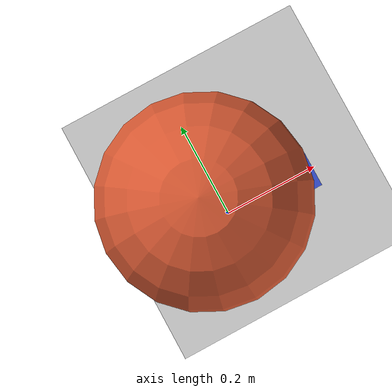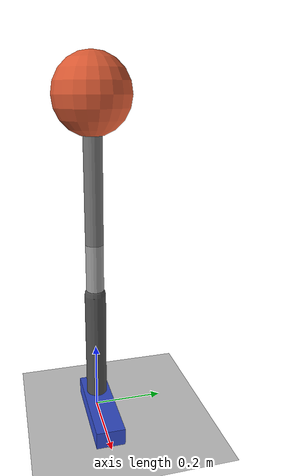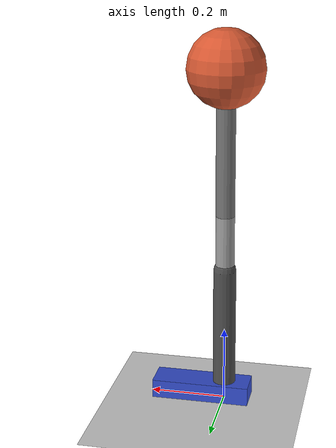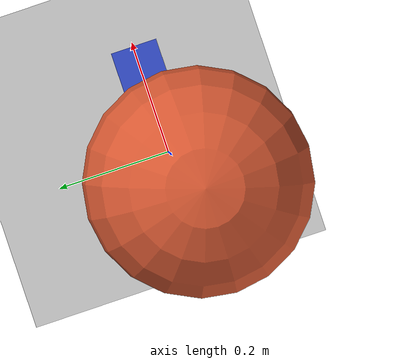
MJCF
<mujoco model="stance_prosthetic_leg">

    <compiler angle="radian"/>

    <option
        timestep="0.001"
        gravity="0 0 -9.81"/>

    <!--
        Native MuJoCo collisions disabled.

        Ground forces will be supplied externally by ground.py
        at heel_site and toe_site.
    -->
    <default>

        <geom
            contype="0"
            conaffinity="0"/>

    </default>

    <worldbody>

        <!-- =====================================================
            LIGHTING
            ===================================================== -->

        <light
            name="main_light"
            pos="0 -2 3"
            dir="0 0 -1"
            diffuse="0.9 0.9 0.9"/>

        <!-- =====================================================
            SIDE CAMERA
            ===================================================== -->

        <camera
            name="side"
            pos="0.40 -2.20 0.55"
            xyaxes="1 0 0 0 0 1"/>

        <!-- =====================================================
             VISUAL GROUND
             ===================================================== -->

        <geom
            name="ground"
            type="plane"
            size="3 3 0.1"
            pos="0 0 0"
            rgba="0.8 0.8 0.8 1"/>

        <!-- =====================================================
             FOOT
             ===================================================== -->

        <body
            name="foot"
            pos="0 0 0.025">

            <!-- DOF 1: horizontal translation -->

            <joint
                name="foot_x"
                type="slide"
                axis="1 0 0"
                damping="0.1"/>

            <!-- DOF 2: vertical translation -->

            <joint
                name="foot_z"
                type="slide"
                axis="0 0 1"
                damping="1.0"/>

            <!-- DOF 3: global leg / foot pitch -->

            <joint
                name="foot_pitch"
                type="hinge"
                axis="0 1 0"
                damping="0.1"/>

            <geom
                name="foot_geom"
                type="box"
                size="0.13 0.04 0.025"
                pos="0.06 0 0"
                mass="0.8"
                rgba="0.2 0.3 0.8 1"/>

            <!-- Heel ground-force application point -->

            <site
                name="heel_site"
                pos="-0.07 0 -0.05"
                size="0.008"
                rgba="1 0 0 1"/>

            <!-- Toe ground-force application point -->

            <site
                name="toe_site"
                pos="0.19 0 -0.05"
                size="0.008"
                rgba="0 1 0 1"/>

            <!-- =================================================
                 SHANK
                 ================================================= -->

            <body
                name="shank"
                pos="0 0 0.025">

                <!--
                    DOF 4: powered ankle

                    +/- 0.35 rad ≈ +/- 20 degrees
                -->

                <joint
                    name="ankle_hinge"
                    type="hinge"
                    axis="0 1 0"
                    range="-0.35 0.35"
                    damping="0.1"/>

                <!--
                    Shank:
                    length = 0.32 m
                    mass   = 1.2 kg
                -->

                <geom
                    name="shank_geom"
                    type="capsule"
                    fromto="0 0 0 0 0 0.32"
                    size="0.03"
                    mass="1.2"
                    rgba="0.3 0.3 0.3 1"/>

                <!-- =================================================
                     PASSIVE PYLON
                     ================================================= -->

                <body
                    name="pylon"
                    pos="0 0 0.32">

                    <!--
                        DOF 5: passive axial compliance
                    -->

                    <joint
                        name="pylon_slide"
                        type="slide"
                        axis="0 0 1"
                        range="-0.06 0.005"
                        stiffness="120000"
                        damping="800"
                        springref="0"/>

                    <!--
                        Pylon:
                        length = 0.15 m
                        mass   = 0.4 kg
                    -->

                    <geom
                        name="pylon_geom"
                        type="capsule"
                        fromto="0 0 0 0 0 0.15"
                        size="0.025"
                        mass="0.4"
                        rgba="0.6 0.6 0.6 1"/>

                    <!-- =================================================
                         UPPER LEG
                         ================================================= -->

                    <body
                        name="upper_leg"
                        pos="0 0 0.15">

                        <geom
                            name="upper_leg_geom"
                            type="capsule"
                            fromto="0 0 0 0 0 0.38"
                            size="0.025"
                            mass="0.01"
                            rgba="0.45 0.45 0.45 1"/>

                        <!-- =============================================
                             HUMAN BODY POINT MASS
                             ============================================= -->

                        <body
                            name="body_mass"
                            pos="0 0 0.38">

                            <geom
                                name="body_mass_geom"
                                type="sphere"
                                size="0.10"
                                mass="70.0"
                                rgba="0.85 0.35 0.20 1"/>

                        </body>

                    </body>

                </body>

            </body>

        </body>

    </worldbody>

    <!-- =========================================================
         ACTUATOR
         ========================================================= -->

    <actuator>

        <!--
            Only actuated DOF.

            Python/Gym calculates:

            tau = K(theta_d - theta) - B theta_dot
        -->

        <motor
            name="ankle_motor"
            joint="ankle_joint"
            gear="1"
            ctrlrange="-150 150"/>

    </actuator>

    <!-- =========================================================
         SENSORS
         ========================================================= -->

    <sensor>

        <!-- Floating base -->

        <jointpos
            name="foot_x_pos"
            joint="foot_x"/>

        <jointpos
            name="foot_z_pos"
            joint="foot_z"/>

        <jointpos
            name="foot_pitch_pos"
            joint="foot_pitch"/>

        <!-- Ankle -->

        <jointpos
            name="ankle_pos"
            joint="ankle_joint"/>

        <jointvel
            name="ankle_vel"
            joint="ankle_joint"/>

        <!-- Pylon -->

        <jointpos
            name="pylon_pos"
            joint="pylon_slide"/>

        <jointvel
            name="pylon_vel"
            joint="pylon_slide"/>

        <!-- Ground interface -->

        <framepos
            name="heel_pos"
            objtype="site"
            objname="heel_site"/>

        <framepos
            name="toe_pos"
            objtype="site"
            objname="toe_site"/>

    </sensor>

</mujoco>
